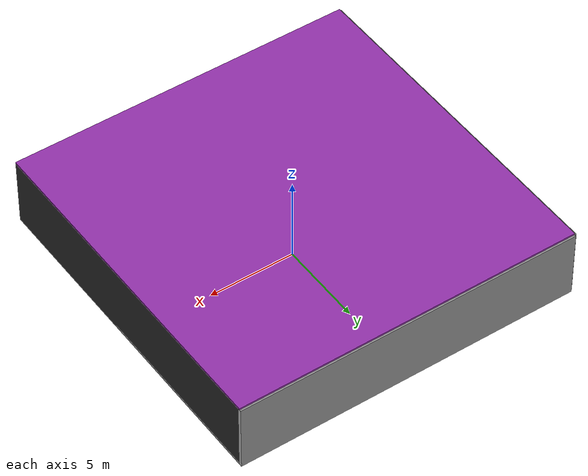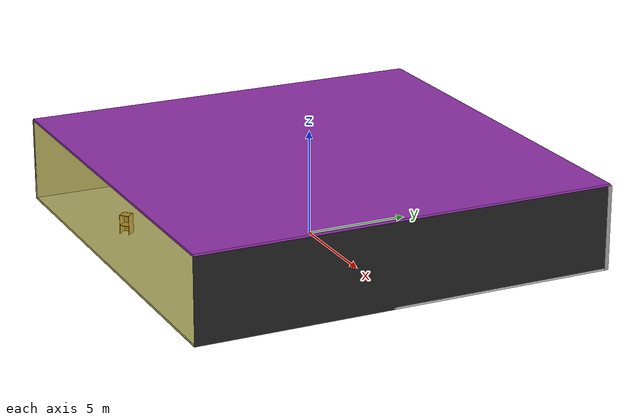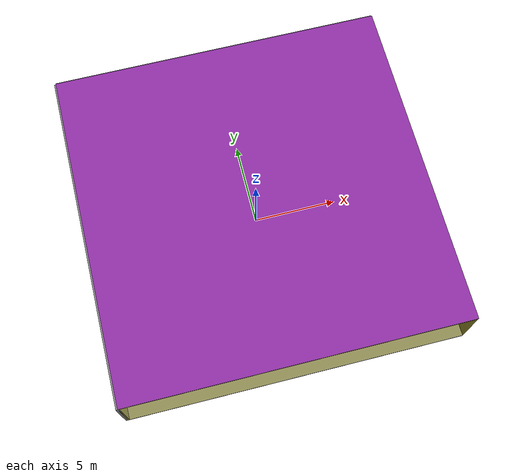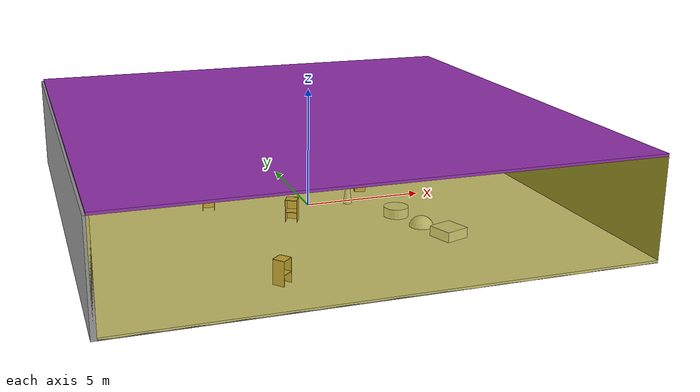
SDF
<sdf version="1.4">
 <world name="default">
  <physics type="ode">
   <max_step_size>0.001</max_step_size>
   <real_time_factor>1</real_time_factor>
   <real_time_update_rate>1000</real_time_update_rate>
   <gravity>0 0 -9.8</gravity>
  </physics>
  <scene><ambient>0.4 0.4 0.4 1</ambient><background>0.7 0.7 0.7 1</background><shadows>1</shadows></scene>
  <model name="Surrounding">
   <static>1</static>
   <link name="Ceiling">
    <collision name="Ceiling_Collision"><geometry><box><size>20 20 0.1</size></box></geometry></collision>
    <visual name="Ceiling_Visual">
     <geometry><box><size>20 20 0.1</size></box></geometry>
     <material>
      <script><uri>file://media/materials/scripts/gazebo.material</uri><name>Gazebo/Purple</name></script>
     </material>
    </visual>
    <pose>0 0 4.05 0 0 0</pose>
   </link>
   <link name="Wall_South">
    <collision name="Wall_South_Collision">
     <geometry><box><size>20 0 4</size></box></geometry>
     <pose>0 0 2 0 -0 0</pose>
    </collision>
    <visual name="Wall_South_Visual">
     <pose>0 0 2 0 -0 0</pose>
     <geometry><box><size>20 0 4</size></box></geometry>
     <material>
      <script>
       <uri>file://media/materials/scripts/gazebo.material</uri>
       <name>Gazebo/YellowTransparent</name>
      </script>
     </material>
    </visual>
    <velocity_decay><linear>0</linear><angular>0</angular></velocity_decay>
    <pose>0 -10 0 0 -0 0</pose>
   </link>
   <link name="Wall_East">
    <collision name="Wall_21_Collision">
     <geometry><box><size>20 0 4</size></box></geometry>
     <pose>0 0 2 0 -0 0</pose>
    </collision>
    <visual name="Wall_21_Visual">
     <pose>0 0 2 0 -0 0</pose>
     <geometry><box><size>20 0 4</size></box></geometry>
     <material>
      <script><uri>file://media/materials/scripts/gazebo.material</uri><name>Gazebo/Black</name></script>
     </material>
    </visual>
    <velocity_decay><linear>0</linear><angular>0</angular></velocity_decay>
    <pose>10 0 0 0 -0 1.5708</pose>
   </link>
   <link name="Wall_North">
    <collision name="Wall_22_Collision">
     <geometry><box><size>20 0.2 4</size></box></geometry>
     <pose>0 0 2 0 -0 0</pose>
    </collision>
    <visual name="Wall_22_Visual">
     <pose>0 0 2 0 -0 0</pose>
     <geometry><box><size>20 0.2 4</size></box></geometry>
     <material>
      <script><uri>file://media/materials/scripts/gazebo.material</uri><name>Gazebo/Grey</name></script>
     </material>
    </visual>
    <velocity_decay><linear>0</linear><angular>0</angular></velocity_decay>
    <pose>0 10 0 0 -0 0</pose>
   </link>
   <link name="Wall_West">
    <collision name="Wall_23_Collision">
     <geometry><box><size>20 0.2 4</size></box></geometry>
     <pose>0 0 2 0 -0 0</pose>
    </collision>
    <visual name="Wall_23_Visual">
     <pose>0 0 2 0 -0 0</pose>
     <geometry><box><size>20 0.2 4</size></box></geometry>
     <material>
      <script><uri>file://media/materials/scripts/gazebo.material</uri><name>Gazebo/GreyGradientSky</name></script>
     </material>
    </visual>
    <velocity_decay><linear>0</linear><angular>0</angular></velocity_decay>
    <pose>-10 0 0 0 0 -1.5708</pose>
   </link>
   <link name="Ground_link">
    <collision name="collision">
     <pose>0 0 .05 0 -0 0</pose>
     <geometry><box><size>20 20 0.1</size></box></geometry>
    </collision>
    <visual name="visual">
     <pose>0 0 .05 0 -0 0</pose>
     <geometry><box><size>20 20 0.1</size></box></geometry>
     <material>
      <script><uri>file://media/materials/scripts/gazebo.material</uri><name>Gazebo/LightOn</name></script>
     </material>
    </visual>
   </link>
   <static>1</static>
  </model>
  <spherical_coordinates>
   <surface_model>EARTH_WGS84</surface_model>
   <latitude_deg>0</latitude_deg>
   <longitude_deg>0</longitude_deg>
   <elevation>0</elevation>
   <heading_deg>0</heading_deg>
  </spherical_coordinates>
  <light name="lightball_0" type="diffuse">
   <diffuse>0.8 0.8 0.8 1</diffuse>
   <specular>0.2 0.2 0.2 1</specular>
   <attenuation>
    <range>100</range>
    <constant>0.7</constant>
    <linear>0.01</linear>
    <quadratic>0.001</quadratic>
   </attenuation>
   <direction>-0.5 0.1 -0.9</direction>
   <pose>-1.43099832196 -5.72911946658 3.10267880426 0 0 0</pose>
  </light>
  <light name="lightball_1" type="diffuse">
   <diffuse>0.8 0.8 0.8 1</diffuse>
   <specular>0.2 0.2 0.2 1</specular>
   <attenuation>
    <range>100</range>
    <constant>0.7</constant>
    <linear>0.01</linear>
    <quadratic>0.001</quadratic>
   </attenuation>
   <direction>-0.5 0.1 -0.9</direction>
   <pose>4.66018721914 0.649537121693 0.588824554562 0 0 0</pose>
  </light>
  <light name="lightball_2" type="diffuse">
   <diffuse>0.8 0.8 0.8 1</diffuse>
   <specular>0.2 0.2 0.2 1</specular>
   <attenuation>
    <range>100</range>
    <constant>0.7</constant>
    <linear>0.01</linear>
    <quadratic>0.001</quadratic>
   </attenuation>
   <direction>-0.5 0.1 -0.9</direction>
   <pose>6.05051000024 -1.65903098406 1.50236707002 0 0 0</pose>
  </light>
  <light name="lightball_3" type="diffuse">
   <diffuse>0.8 0.8 0.8 1</diffuse>
   <specular>0.2 0.2 0.2 1</specular>
   <attenuation>
    <range>100</range>
    <constant>0.7</constant>
    <linear>0.01</linear>
    <quadratic>0.001</quadratic>
   </attenuation>
   <direction>-0.5 0.1 -0.9</direction>
   <pose>-1.78836381776 0.264971402419 2.20831158948 0 0 0</pose>
  </light>
  <light name="lightball_4" type="diffuse">
   <diffuse>0.8 0.8 0.8 1</diffuse>
   <specular>0.2 0.2 0.2 1</specular>
   <attenuation>
    <range>100</range>
    <constant>0.7</constant>
    <linear>0.01</linear>
    <quadratic>0.001</quadratic>
   </attenuation>
   <direction>-0.5 0.1 -0.9</direction>
   <pose>-5.08345186458 2.50203336268 2.33476910318 0 0 0</pose>
  </light>
  <light name="lightball_5" type="diffuse">
   <diffuse>0.8 0.8 0.8 1</diffuse>
   <specular>0.2 0.2 0.2 1</specular>
   <attenuation>
    <range>100</range>
    <constant>0.7</constant>
    <linear>0.01</linear>
    <quadratic>0.001</quadratic>
   </attenuation>
   <direction>-0.5 0.1 -0.9</direction>
   <pose>-7.08925989715 -2.49407320704 1.21962698439 0 0 0</pose>
  </light>
  <light name="lightball_6" type="diffuse">
   <diffuse>0.8 0.8 0.8 1</diffuse>
   <specular>0.2 0.2 0.2 1</specular>
   <attenuation>
    <range>100</range>
    <constant>0.7</constant>
    <linear>0.01</linear>
    <quadratic>0.001</quadratic>
   </attenuation>
   <direction>-0.5 0.1 -0.9</direction>
   <pose>-3.83513672653 -4.37191152836 2.96514404213 0 0 0</pose>
  </light>
  <light name="lightball_7" type="diffuse">
   <diffuse>0.8 0.8 0.8 1</diffuse>
   <specular>0.2 0.2 0.2 1</specular>
   <attenuation>
    <range>100</range>
    <constant>0.7</constant>
    <linear>0.01</linear>
    <quadratic>0.001</quadratic>
   </attenuation>
   <direction>-0.5 0.1 -0.9</direction>
   <pose>-4.9150053153 0.94956707903 3.4824867447 0 0 0</pose>
  </light>
  <light name="lightball_8" type="diffuse">
   <diffuse>0.8 0.8 0.8 1</diffuse>
   <specular>0.2 0.2 0.2 1</specular>
   <attenuation>
    <range>100</range>
    <constant>0.7</constant>
    <linear>0.01</linear>
    <quadratic>0.001</quadratic>
   </attenuation>
   <direction>-0.5 0.1 -0.9</direction>
   <pose>-3.44095767392 -4.26731592726 2.76879927668 0 0 0</pose>
  </light>
  <light name="lightball_9" type="diffuse">
   <diffuse>0.8 0.8 0.8 1</diffuse>
   <specular>0.2 0.2 0.2 1</specular>
   <attenuation>
    <range>100</range>
    <constant>0.7</constant>
    <linear>0.01</linear>
    <quadratic>0.001</quadratic>
   </attenuation>
   <direction>-0.5 0.1 -0.9</direction>
   <pose>8.104163849 -1.12067050541 2.01584939886 0 0 0</pose>
  </light>
  <light name="lightball_10" type="diffuse">
   <diffuse>0.8 0.8 0.8 1</diffuse>
   <specular>0.2 0.2 0.2 1</specular>
   <attenuation>
    <range>100</range>
    <constant>0.7</constant>
    <linear>0.01</linear>
    <quadratic>0.001</quadratic>
   </attenuation>
   <direction>-0.5 0.1 -0.9</direction>
   <pose>6.99906654383 -0.950333680042 3.61827362282 0 0 0</pose>
  </light>
  <include><uri>model://cabinet</uri><pose>-3.4569047471 -7.80900827027 0 0 0 2.29465445438</pose></include>
  <include><uri>model://cabinet</uri><pose>-4.19241366667 0.44898217878 0 0 0 1.35432589984</pose></include>
  <include><uri>model://cabinet</uri><pose>-1.30352052542 -1.90381440761 0 0 0 1.12247745614</pose></include>
  <include>
   <uri>model://construction_cone</uri>
   <pose>1.56830694005 -0.550786962443 0 0 0 2.71792243576</pose>
  </include>
  <include><uri>model://cabinet</uri><pose>2.68038856393 0.950220758386 0 0 0 2.88226390017</pose></include>
  <include>
   <uri>model://textured_shapes</uri>
   <pose>3.39132617842 -4.06203578795 0 0 0 0.334566807942</pose>
  </include>
  <include>
   <uri>model://textured_shapes</uri>
   <pose>4.95463974165 6.60798237468 0 0 0 2.86726576957</pose>
  </include>
  <include><uri>model://cabinet</uri><pose>8.48040313727 5.13740283728 0 0 0 2.63902700326</pose></include>
  <include>
   <uri>model://construction_cone</uri>
   <pose>7.18365238053 8.66628542149 0 0 0 1.3981109939</pose>
  </include>
 </world>
</sdf>

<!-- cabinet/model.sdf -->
<sdf version="1.5">
  <model name="cabinet">
    <static>true</static>
    <link name="cabinet_bottom_plate">
      <inertial>
        <pose>0 0 -1 0 0 0</pose>
        <inertia>
          <ixx>2.050000</ixx>
          <ixy>0</ixy>
          <ixz>0</ixz>
          <iyy>2.050000</iyy>
          <iyz>0</iyz>
          <izz>2.050000</izz>
        </inertia>
        <mass>25.000000</mass>
      </inertial>
      <collision name="cabinet_bottom_plate_geom">
        <pose>0 0 0.010000 0 0 0</pose>
        <geometry>
          <box>
            <size>0.450000 0.450000 0.020000</size>
          </box>
        </geometry>
      </collision>
      <visual name="cabinet_bottom_plate_geom_visual">
        <pose>0 0 0.010000 0 0 0</pose>
        <geometry>
          <box>
            <size>0.450000 0.450000 0.020000</size>
          </box>
        </geometry>
        <material>
          <script>
            <uri>model://media/materials/scripts/gazebo.material</uri>
            <name>Gazebo/Wood</name>
          </script>
        </material>
      </visual>
      <collision name="cabinet_bottom_plate_geom_cabinet_back_plate">
        <pose>0.235000 0 0.510000 0 0 0</pose>
        <geometry>
          <box>
            <size>0.020000 0.450000 1.020000</size>
          </box>
        </geometry>
      </collision>
      <visual name="cabinet_bottom_plate_geom_cabinet_back_plate_visual">
        <pose>0.235000 0 0.510000 0 0 0</pose>
        <geometry>
          <box>
            <size>0.020000 0.450000 1.020000</size>
          </box>
        </geometry>
        <material>
          <script>
            <uri>model://media/materials/scripts/gazebo.material</uri>
            <name>Gazebo/Wood</name>
          </script>
        </material>
      </visual>
      <collision name="cabinet_bottom_plate_geom_cabinet_left_plate">
        <pose>0 0.235000 0.510000 0 0 0</pose>
        <geometry>
          <box>
            <size>0.450000 0.020000 1.020000</size>
          </box>
        </geometry>
      </collision>
      <visual name="cabinet_bottom_plate_geom_cabinet_left_plate_visual">
        <pose>0 0.235000 0.510000 0 0 0</pose>
        <geometry>
          <box>
            <size>0.450000 0.020000 1.020000</size>
          </box>
        </geometry>
        <material>
          <script>
            <uri>model://media/materials/scripts/gazebo.material</uri>
            <name>Gazebo/Wood</name>
          </script>
        </material>
      </visual>
      <collision name="cabinet_bottom_plate_geom_cabinet_middle_plate">
        <pose>0 0 0.510000 0 0 0</pose>
        <geometry>
          <box>
            <size>0.450000 0.450000 0.020000</size>
          </box>
        </geometry>
      </collision>
      <visual name="cabinet_bottom_plate_geom_cabinet_middle_plate_visual">
        <pose>0 0 0.510000 0 0 0</pose>
        <geometry>
          <box>
            <size>0.450000 0.450000 0.020000</size>
          </box>
        </geometry>
        <material>
          <script>
            <uri>model://media/materials/scripts/gazebo.material</uri>
            <name>Gazebo/Wood</name>
          </script>
        </material>
      </visual>
      <collision name="cabinet_bottom_plate_geom_cabinet_right_plate">
        <pose>0 -0.235000 0.510000 0 0 0</pose>
        <geometry>
          <box>
            <size>0.450000 0.020000 1.020000</size>
          </box>
        </geometry>
      </collision>
      <visual name="cabinet_bottom_plate_geom_cabinet_right_plate_visual">
        <pose>0 -0.235000 0.510000 0 0 0</pose>
        <geometry>
          <box>
            <size>0.450000 0.020000 1.020000</size>
          </box>
        </geometry>
        <material>
          <script>
            <uri>model://media/materials/scripts/gazebo.material</uri>
            <name>Gazebo/Wood</name>
          </script>
        </material>
      </visual>
      <collision name="cabinet_bottom_plate_geom_cabinet_top_plate">
        <pose>0 0 1.010000 0 0 0</pose>
        <geometry>
          <box>
            <size>0.450000 0.450000 0.020000</size>
          </box>
        </geometry>
      </collision>
      <visual name="cabinet_bottom_plate_geom_cabinet_top_plate_visual">
        <pose>0 0 1.010000 0 0 0</pose>
        <geometry>
          <box>
            <size>0.450000 0.450000 0.020000</size>
          </box>
        </geometry>
        <material>
          <script>
            <uri>model://media/materials/scripts/gazebo.material</uri>
            <name>Gazebo/Wood</name>
          </script>
        </material>
      </visual>
    </link>
  </model>
</sdf>

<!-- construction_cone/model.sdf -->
<sdf version="1.5">
  <model name="Construction Cone">
    <link name="link">
      <collision name="collision">
        <geometry>
          <mesh>
            <scale>10 10 10</scale>
            <uri>file://isr-testbed/construction_cone/meshes/construction_cone.dae</uri>
          </mesh>
        </geometry>
      </collision>
      <visual name="visual">
        <geometry>
          <mesh>
            <scale>10 10 10</scale>
            <uri>file://isr-testbed/construction_cone/meshes/construction_cone.dae</uri>
          </mesh>
        </geometry>
      </visual>
    </link>
  </model>
</sdf>

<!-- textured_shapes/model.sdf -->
<sdf version="1.6">
  <model name="textured_shapes">
    <pose>0 0 0.5 0 0 0</pose>
    <link name="box">
      <pose>0 -1.5 0 0 0 0</pose>
      <collision name="collision">
        <geometry>
          <box>
            <size>1 1 1</size>
          </box>
        </geometry>
      </collision>
      <visual name="visual">
        <geometry>
          <box>
            <size>1 1 1</size>
          </box>
        </geometry>
        <material>
          <script>
            <uri>model://../model_source/models/textured_shapes/materials/scripts</uri>
            <uri>model://../model_source/models/textured_shapes/materials/textures</uri>
            <name>TexturedShape/Squares</name>
          </script>
        </material>
      </visual>
    </link>
    <link name="sphere">
      <collision name="collision">
        <geometry>
          <sphere>
            <radius>0.5</radius>
          </sphere>
        </geometry>
      </collision>
      <visual name="visual">
        <geometry>
          <sphere>
            <radius>0.5</radius>
          </sphere>
        </geometry>
        <material>
          <script>
            <uri>model://../model_source/models/textured_shapes/materials/scripts</uri>
            <uri>model://../model_source/models/textured_shapes/materials/textures</uri>
            <name>TexturedShape/Squares</name>
          </script>
        </material>
      </visual>
    </link>
    <link name="cylinder">
      <pose>0 1.5 0 0 0 0</pose>
      <collision name="collision">
        <geometry>
          <cylinder>
            <radius>0.5</radius>
            <length>1</length>
          </cylinder>
        </geometry>
      </collision>
      <visual name="visual">
        <geometry>
          <cylinder>
            <radius>0.5</radius>
            <length>1</length>
          </cylinder>
        </geometry>
        <material>
          <script>
            <uri>model://../model_source/models/textured_shapes/materials/scripts</uri>
            <uri>model://../model_source/models/textured_shapes/materials/textures</uri>
            <name>TexturedShape/Squares</name>
          </script>
        </material>
      </visual>
    </link>
  </model>
</sdf>
